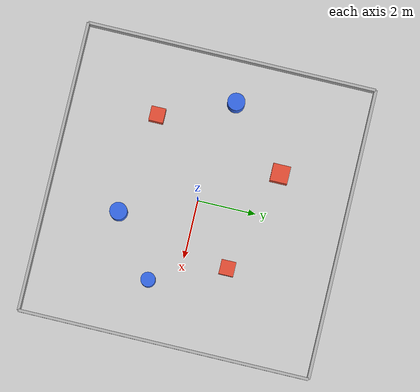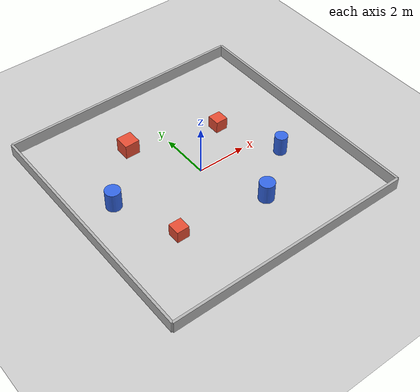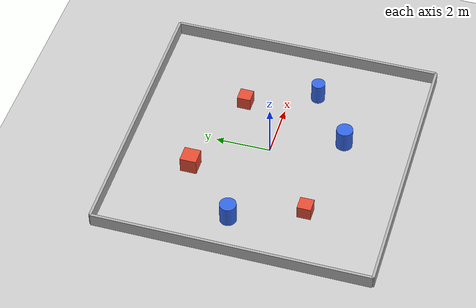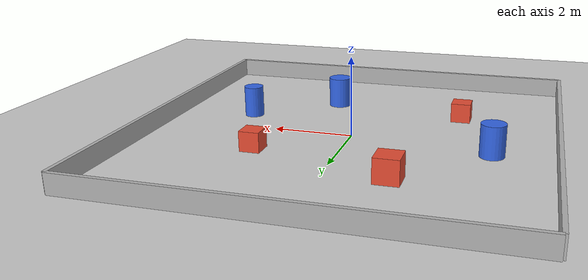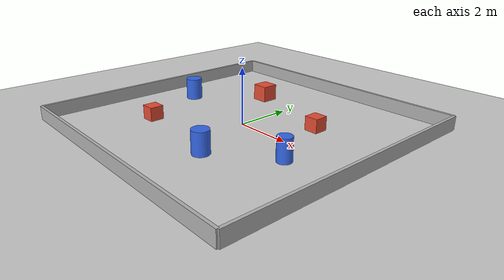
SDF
<?xml version="1.0" ?>
<sdf version="1.6">
  <world name="obstacles">

    <include><uri>model://sun</uri></include>
    <include><uri>model://ground_plane</uri></include>

    <!-- Faster-than-realtime friendly physics -->
    <physics type="ode">
      <max_step_size>0.001</max_step_size>
      <real_time_factor>1.0</real_time_factor>
      <real_time_update_rate>1000</real_time_update_rate>
    </physics>

    <plugin name="gazebo_ros_state" filename="libgazebo_ros_state.so">
      <ros>
        <namespace>/</namespace>
      </ros>
      <update_rate>1.0</update_rate>
    </plugin>

    <!-- ============================ Arena walls ======================= -->
    <model name="arena_walls">
      <static>true</static>
      <!-- North wall -->
      <link name="wall_n">
        <pose>0 5 0.25 0 0 0</pose>
        <collision name="c"><geometry><box><size>10 0.1 0.5</size></box></geometry></collision>
        <visual name="v"><geometry><box><size>10 0.1 0.5</size></box></geometry>
          <material><ambient>0.6 0.6 0.6 1</ambient><diffuse>0.7 0.7 0.7 1</diffuse></material></visual>
      </link>
      <!-- South wall -->
      <link name="wall_s">
        <pose>0 -5 0.25 0 0 0</pose>
        <collision name="c"><geometry><box><size>10 0.1 0.5</size></box></geometry></collision>
        <visual name="v"><geometry><box><size>10 0.1 0.5</size></box></geometry>
          <material><ambient>0.6 0.6 0.6 1</ambient><diffuse>0.7 0.7 0.7 1</diffuse></material></visual>
      </link>
      <!-- East wall -->
      <link name="wall_e">
        <pose>5 0 0.25 0 0 0</pose>
        <collision name="c"><geometry><box><size>0.1 10 0.5</size></box></geometry></collision>
        <visual name="v"><geometry><box><size>0.1 10 0.5</size></box></geometry>
          <material><ambient>0.6 0.6 0.6 1</ambient><diffuse>0.7 0.7 0.7 1</diffuse></material></visual>
      </link>
      <!-- West wall -->
      <link name="wall_w">
        <pose>-5 0 0.25 0 0 0</pose>
        <collision name="c"><geometry><box><size>0.1 10 0.5</size></box></geometry></collision>
        <visual name="v"><geometry><box><size>0.1 10 0.5</size></box></geometry>
          <material><ambient>0.6 0.6 0.6 1</ambient><diffuse>0.7 0.7 0.7 1</diffuse></material></visual>
      </link>
    </model>

    <!-- ============================ Obstacles ========================= -->
    <model name="box_1">
      <static>true</static>
      <pose>2.0 1.5 0.25 0 0 0</pose>
      <link name="l">
        <collision name="c"><geometry><box><size>0.5 0.5 0.5</size></box></geometry></collision>
        <visual name="v"><geometry><box><size>0.5 0.5 0.5</size></box></geometry>
          <material><ambient>0.8 0.3 0.2 1</ambient><diffuse>0.9 0.3 0.2 1</diffuse></material></visual>
      </link>
    </model>

    <model name="box_2">
      <static>true</static>
      <pose>-1.5 2.5 0.3 0 0 0</pose>
      <link name="l">
        <collision name="c"><geometry><box><size>0.6 0.6 0.6</size></box></geometry></collision>
        <visual name="v"><geometry><box><size>0.6 0.6 0.6</size></box></geometry>
          <material><ambient>0.8 0.3 0.2 1</ambient><diffuse>0.9 0.3 0.2 1</diffuse></material></visual>
      </link>
    </model>

    <model name="box_3">
      <static>true</static>
      <pose>-2.5 -2.0 0.25 0 0 0</pose>
      <link name="l">
        <collision name="c"><geometry><box><size>0.5 0.5 0.5</size></box></geometry></collision>
        <visual name="v"><geometry><box><size>0.5 0.5 0.5</size></box></geometry>
          <material><ambient>0.8 0.3 0.2 1</ambient><diffuse>0.9 0.3 0.2 1</diffuse></material></visual>
      </link>
    </model>

    <model name="cyl_1">
      <static>true</static>
      <pose>1.0 -2.5 0.4 0 0 0</pose>
      <link name="l">
        <collision name="c"><geometry><cylinder><radius>0.3</radius><length>0.8</length></cylinder></geometry></collision>
        <visual name="v"><geometry><cylinder><radius>0.3</radius><length>0.8</length></cylinder></geometry>
          <material><ambient>0.2 0.4 0.8 1</ambient><diffuse>0.2 0.4 0.9 1</diffuse></material></visual>
      </link>
    </model>

    <model name="cyl_2">
      <static>true</static>
      <pose>3.0 -1.0 0.4 0 0 0</pose>
      <link name="l">
        <collision name="c"><geometry><cylinder><radius>0.25</radius><length>0.8</length></cylinder></geometry></collision>
        <visual name="v"><geometry><cylinder><radius>0.25</radius><length>0.8</length></cylinder></geometry>
          <material><ambient>0.2 0.4 0.8 1</ambient><diffuse>0.2 0.4 0.9 1</diffuse></material></visual>
      </link>
    </model>

    <model name="cyl_3">
      <static>true</static>
      <pose>-3.5 0.5 0.4 0 0 0</pose>
      <link name="l">
        <collision name="c"><geometry><cylinder><radius>0.3</radius><length>0.8</length></cylinder></geometry></collision>
        <visual name="v"><geometry><cylinder><radius>0.3</radius><length>0.8</length></cylinder></geometry>
          <material><ambient>0.2 0.4 0.8 1</ambient><diffuse>0.2 0.4 0.9 1</diffuse></material></visual>
      </link>
    </model>

  </world>
</sdf>
